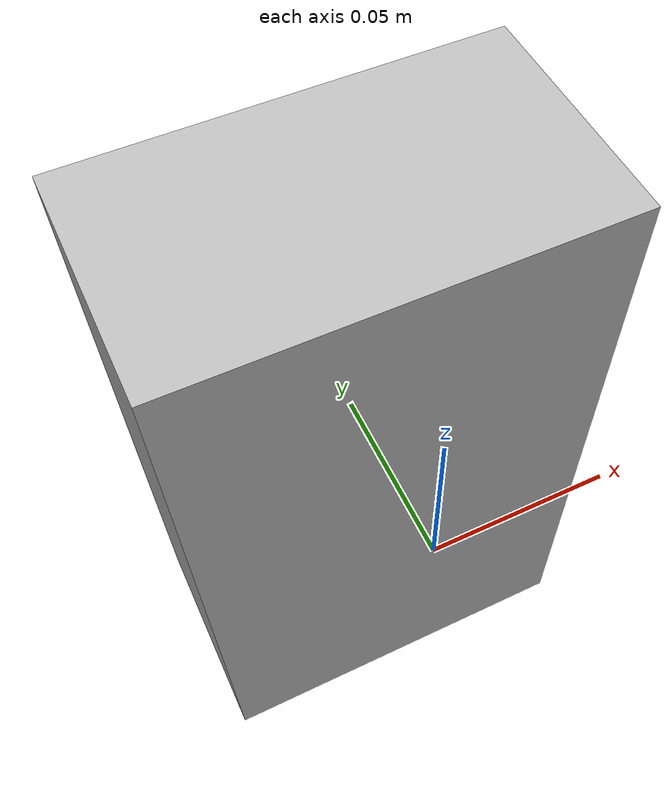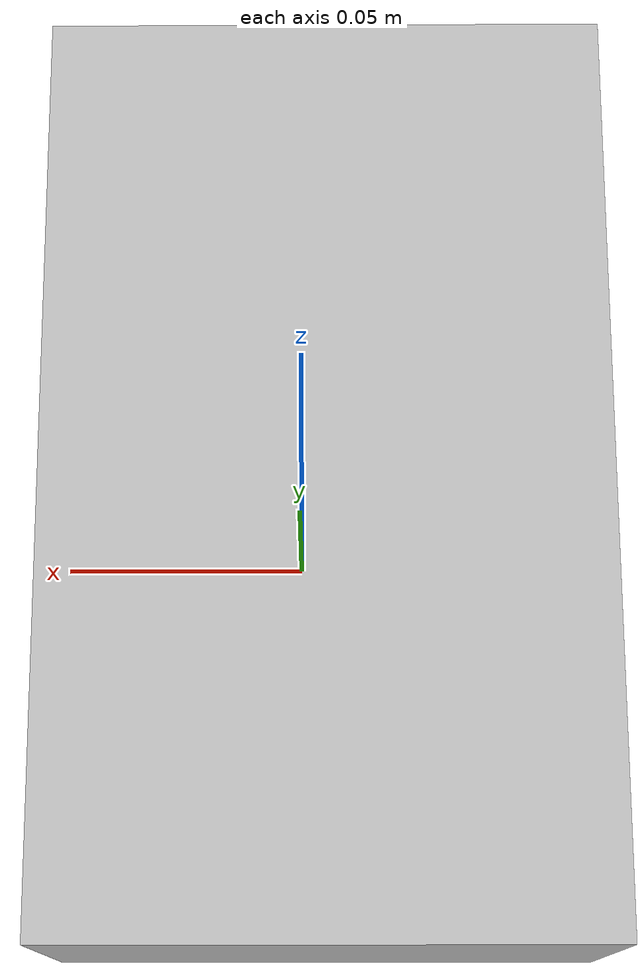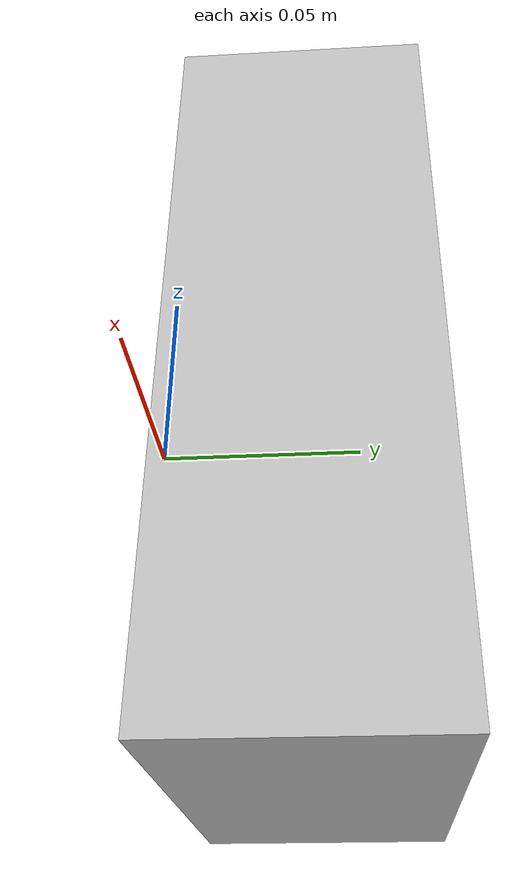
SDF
<?xml version="1.0" ?>
<sdf version="1.4">
  <model name="shelf1_box1_3b">
    <link name="body">
      <pose>0 0 0 0 0 0</pose>
      <inertial>
        <pose>  -0.005000   0.038000   0.005500 0 0 0</pose>
        <mass>0.5</mass>
        <inertia>
          <ixx>0.01</ixx>
          <ixy>0</ixy>
          <ixz>0</ixz>
          <iyy>0.01</iyy>
          <iyz>0</iyz>
          <izz>0.01</izz>
        </inertia>
      </inertial>
      <collision name="collision">
        <geometry>
          <mesh>
            <uri>model://bookshelf/shelf1_items/box1_3b/box1_3b.dae</uri>
          </mesh>
        </geometry>
      </collision>
      <visual name="visual">
        <geometry>
          <mesh>
            <uri>model://bookshelf/shelf1_items/box1_3b/box1_3b.dae</uri>
          </mesh>
        </geometry>
      </visual>
    </link>
  </model>
</sdf>
